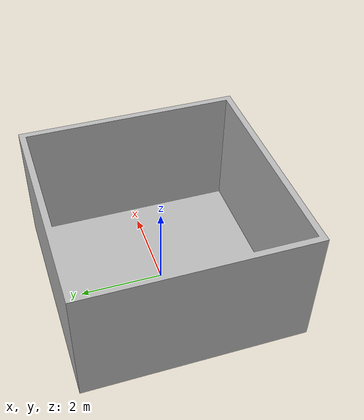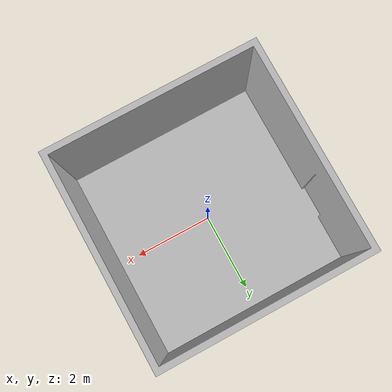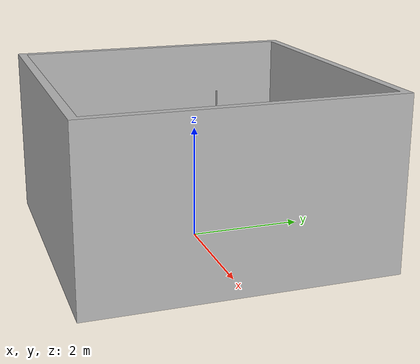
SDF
<sdf version='1.10'>
  <world name='empty_office_square'>
    <physics name='1ms' type='ignored'>
      <max_step_size>0.001</max_step_size>
      <real_time_factor>1</real_time_factor>
      <real_time_update_rate>1000</real_time_update_rate>
    </physics>
    <plugin name='gz::sim::systems::Physics' filename='gz-sim-physics-system'/>
    <plugin name='gz::sim::systems::UserCommands' filename='gz-sim-user-commands-system'/>
    <plugin name='gz::sim::systems::SceneBroadcaster' filename='gz-sim-scene-broadcaster-system'/>
    <plugin name='gz::sim::systems::Contact' filename='gz-sim-contact-system'/>
    <plugin filename="gz-sim-sensors-system" name ="gz::sim::systems::Sensors">
      <render_engine>ogre2</render_engine>
    </plugin>
    <gravity>0 0 -9.8000000000000007</gravity>
    <magnetic_field>5.5644999999999998e-06 2.2875799999999999e-05 -4.2388400000000002e-05</magnetic_field>
    <atmosphere type='adiabatic'/>
    <scene>
      <ambient>0.08 0.08 0.08 1</ambient>
      <background>0.2 0.2 0.2 1</background>
      <shadows>true</shadows>
    </scene>
    <model name='ground_plane'>
      <static>true</static>
      <link name='link'>
        <collision name='collision'>
          <geometry>
            <plane>
              <normal>0 0 1</normal>
              <size>100 100</size>
            </plane>
          </geometry>
          <surface>
            <friction>
              <ode/>
            </friction>
            <bounce/>
            <contact/>
          </surface>
        </collision>
        <pose>0 0 0 0 0 0</pose>
        <inertial>
          <pose>0 0 0 0 0 0</pose>
          <mass>1</mass>
          <inertia>
            <ixx>1</ixx>
            <ixy>0</ixy>
            <ixz>0</ixz>
            <iyy>1</iyy>
            <iyz>0</iyz>
            <izz>1</izz>
          </inertia>
        </inertial>
        <enable_wind>false</enable_wind>
      </link>
      <pose>0 0 0 0 0 0</pose>
      <self_collide>false</self_collide>
    </model>
    <model name='Office-Medium_Square'>
      <static>true</static>
      <link name='link'>
        <visual name='visual'>
          <geometry>
            <mesh>
              <uri>../custom_worlds/rooms/Office-Medium_Square.obj</uri>
            </mesh>
          </geometry>
        </visual>
        <collision name='collision'>
          <geometry>
            <mesh>
              <uri>../custom_worlds/rooms/Office-Medium_Square.obj</uri>
            </mesh>
          </geometry>
        </collision>
        <pose>0 0 0 0 0 0</pose>
        <inertial>
          <pose>0 0 0 0 0 0</pose>
          <mass>1</mass>
          <inertia>
            <ixx>1</ixx>
            <ixy>0</ixy>
            <ixz>0</ixz>
            <iyy>1</iyy>
            <iyz>0</iyz>
            <izz>1</izz>
          </inertia>
        </inertial>
        <enable_wind>false</enable_wind>
      </link>
      <pose>0 -9.8181869305954531e-91 5.1475575894680289e-85 1.5708000000000006 0 0</pose>
      <self_collide>false</self_collide>
    </model>

    <!-- Ceiling lights grid -->

    <light name="ceiling_light_1" type="point">
        <pose>-1.25 1.25 3 0 0 0</pose>
        <diffuse>0.6 0.6 0.6 1</diffuse>
        <specular>0.05 0.05 0.05 1</specular>
        <attenuation>
          <range>8</range>
          <constant>0.3</constant>
          <linear>0.4</linear>
          <quadratic>0.25</quadratic>
        </attenuation>
    </light>

    <light name="ceiling_light_2" type="point">
        <pose>0 1.25 3 0 0 0</pose>
        <diffuse>0.6 0.6 0.6 1</diffuse>
        <specular>0.05 0.05 0.05 1</specular>
        <attenuation>
          <range>8</range>
          <constant>0.3</constant>
          <linear>0.4</linear>
          <quadratic>0.25</quadratic>
        </attenuation>
    </light>

    <light name="ceiling_light_3" type="point">
        <pose>1.25 1.25 3 0 0 0</pose>
        <diffuse>0.6 0.6 0.6 1</diffuse>
        <specular>0.05 0.05 0.05 1</specular>
        <attenuation>
          <range>8</range>
          <constant>0.3</constant>
          <linear>0.4</linear>
          <quadratic>0.25</quadratic>
        </attenuation>
    </light>

    <light name="ceiling_light_4" type="point">
        <pose>-1.25 0 3 0 0 0</pose>
        <diffuse>0.6 0.6 0.6 1</diffuse>
        <specular>0.05 0.05 0.05 1</specular>
        <attenuation>
          <range>8</range>
          <constant>0.3</constant>
          <linear>0.4</linear>
          <quadratic>0.25</quadratic>
        </attenuation>
    </light>

    <light name="ceiling_light_5" type="point">
        <pose>0 0 3 0 0 0</pose>
        <diffuse>0.6 0.6 0.6 1</diffuse>
        <specular>0.05 0.05 0.05 1</specular>
        <attenuation>
          <range>8</range>
          <constant>0.3</constant>
          <linear>0.4</linear>
          <quadratic>0.25</quadratic>
        </attenuation>
    </light>

    <light name="ceiling_light_6" type="point">
        <pose>1.25 0 3 0 0 0</pose>
        <diffuse>0.6 0.6 0.6 1</diffuse>
        <specular>0.05 0.05 0.05 1</specular>
        <attenuation>
          <range>8</range>
          <constant>0.3</constant>
          <linear>0.4</linear>
          <quadratic>0.25</quadratic>
        </attenuation>
    </light>

    <light name="ceiling_light_7" type="point">
        <pose>-1.25 -1.25 3 0 0 0</pose>
        <diffuse>0.6 0.6 0.6 1</diffuse>
        <specular>0.05 0.05 0.05 1</specular>
        <attenuation>
          <range>8</range>
          <constant>0.3</constant>
          <linear>0.4</linear>
          <quadratic>0.25</quadratic>
        </attenuation>
    </light>

    <light name="ceiling_light_8" type="point">
        <pose>0 -1.25 3 0 0 0</pose>
        <diffuse>0.6 0.6 0.6 1</diffuse>
        <specular>0.05 0.05 0.05 1</specular>
        <attenuation>
          <range>8</range>
          <constant>0.3</constant>
          <linear>0.4</linear>
          <quadratic>0.25</quadratic>
        </attenuation>
    </light>

    <light name="ceiling_light_9" type="point">
        <pose>1.25 -1.25 3 0 0 0</pose>
        <diffuse>0.6 0.6 0.6 1</diffuse>
        <specular>0.05 0.05 0.05 1</specular>
        <attenuation>
          <range>8</range>
          <constant>0.3</constant>
          <linear>0.4</linear>
          <quadratic>0.25</quadratic>
        </attenuation>
    </light>
  </world>
</sdf>
